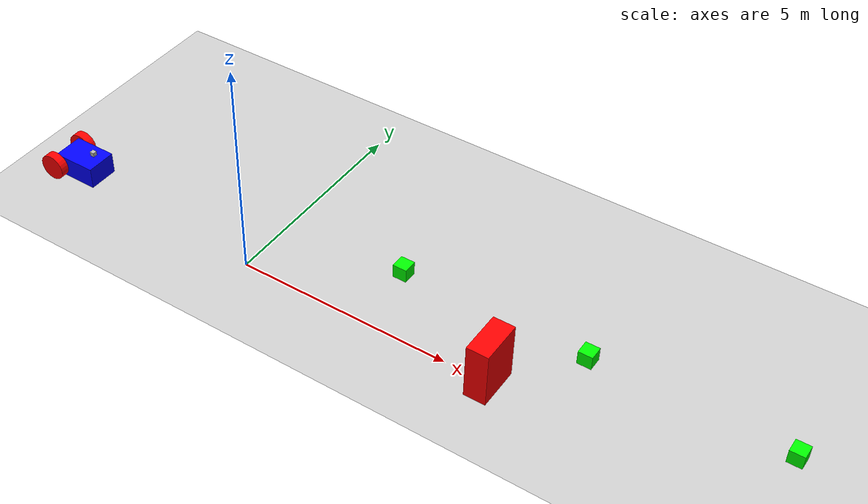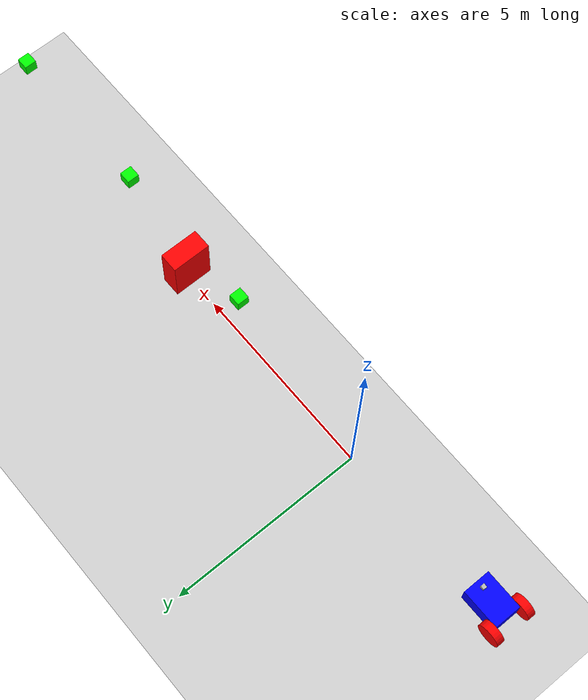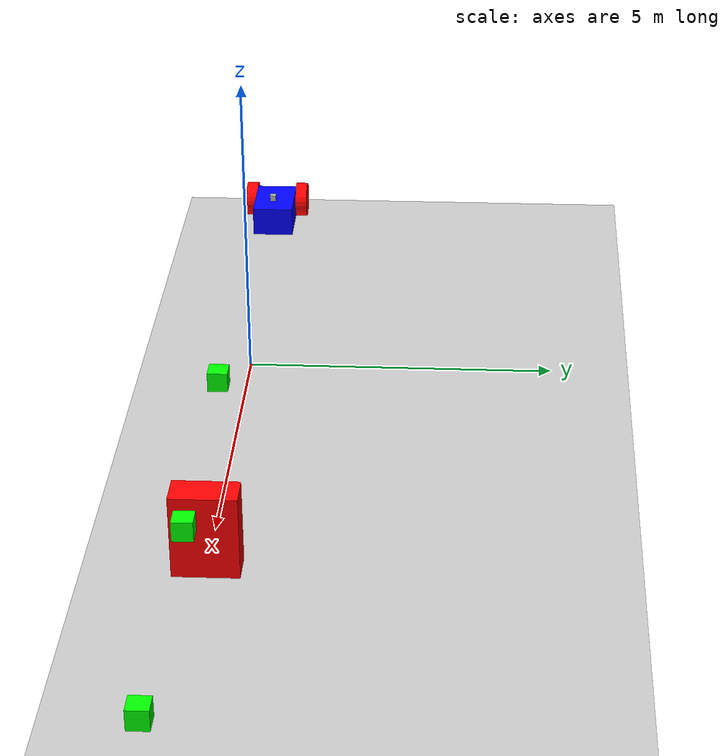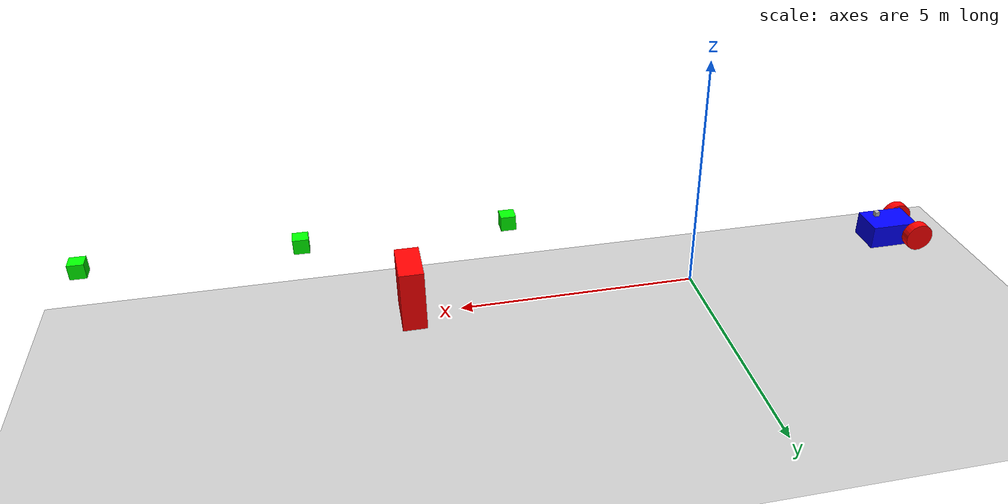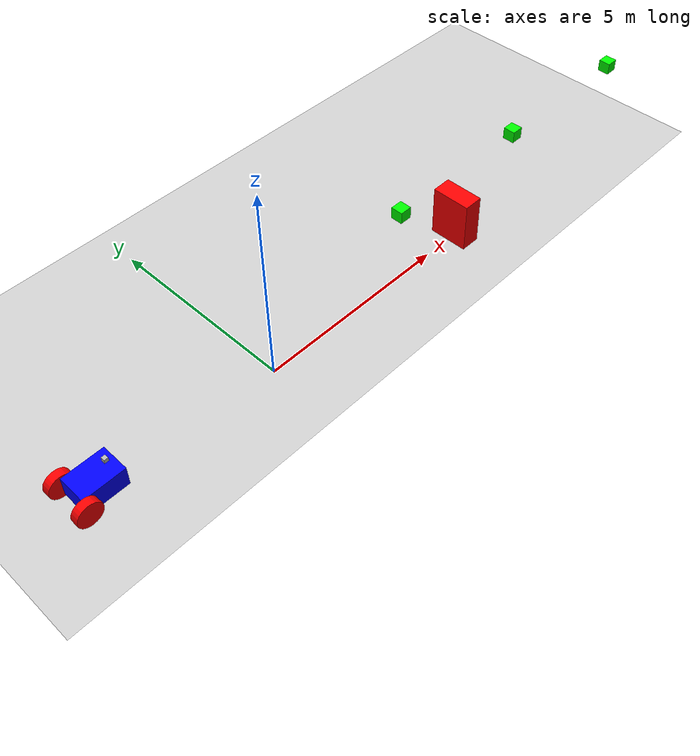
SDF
<?xml version="1.0" ?>
<sdf version="1.8">
    <world name="avg_world">
        <physics name="1ms" type="ignored">
            <max_step_size>0.001</max_step_size>
            <real_time_factor>1.0</real_time_factor>
        </physics>
        <plugin
            filename="ignition-gazebo-physics-system"
            name="ignition::gazebo::systems::Physics">
        </plugin>
        <plugin
            filename="ignition-gazebo-user-commands-system"
            name="ignition::gazebo::systems::UserCommands">
        </plugin>
        <plugin
            filename="ignition-gazebo-scene-broadcaster-system"
            name="ignition::gazebo::systems::SceneBroadcaster">
        </plugin>
        <plugin filename="ignition-gazebo-imu-system"
                name="ignition::gazebo::systems::Imu">
        </plugin>
        <plugin filename="ignition-gazebo-sensors-system"
                name="ignition::gazebo::systems::Sensors">
            <render_engine>ogre2</render_engine>
        </plugin>
        <plugin filename="ignition-gazebo-contact-system"
                name="ignition::gazebo::systems::Contact">
        </plugin>
        <gui fullscreen="0">
          <!-- 3D scene -->
          <plugin filename="MinimalScene" name="3D View">
          <gz-gui>
            <title>3D View</title>
            <property type="bool" key="showTitleBar">false</property>
            <property type="string" key="state">docked</property>
          </gz-gui>

          <engine>ogre2</engine>
          <scene>scene</scene>
          <ambient_light>0.4 0.4 0.4</ambient_light>
          <background_color>0.8 0.8 0.8</background_color>
          <camera_pose>-6 0 6 0 0.5 0</camera_pose>
          <camera_clip>
            <near>0.25</near>
            <far>25000</far>
          </camera_clip>
          </plugin>

          <!-- World control -->
          <plugin filename="WorldControl" name="World control">
          <gz-gui>
            <title>World control</title>
            <property type="bool" key="showTitleBar">false</property>
            <property type="bool" key="resizable">false</property>
            <property type="double" key="height">72</property>
            <property type="double" key="width">121</property>
            <property type="double" key="z">1</property>

            <property type="string" key="state">floating</property>
            <anchors target="3D View">
              <line own="left" target="left"/>
              <line own="bottom" target="bottom"/>
            </anchors>
          </gz-gui>

          <play_pause>true</play_pause>
          <step>true</step>
          <start_paused>true</start_paused>
          <use_event>true</use_event>
          </plugin>

          <!-- World statistics -->
          <plugin filename="WorldStats" name="World stats">
          <gz-gui>
            <title>World stats</title>
            <property type="bool" key="showTitleBar">false</property>
            <property type="bool" key="resizable">false</property>
            <property type="double" key="height">110</property>
            <property type="double" key="width">290</property>
            <property type="double" key="z">1</property>

            <property type="string" key="state">floating</property>
            <anchors target="3D View">
              <line own="right" target="right"/>
              <line own="bottom" target="bottom"/>
            </anchors>
          </gz-gui>

          <sim_time>true</sim_time>
          <real_time>true</real_time>
          <real_time_factor>true</real_time_factor>
          <iterations>true</iterations>
          </plugin>

          <plugin filename="VisualizeLidar" name="Visualize Lidar">
          </plugin>

          <!-- Plugins that add functionality to the scene -->
          <plugin filename="EntityContextMenuPlugin" name="Entity context menu">
          <gz-gui>
            <property key="state" type="string">floating</property>
            <property key="width" type="double">5</property>
            <property key="height" type="double">5</property>
            <property key="showTitleBar" type="bool">false</property>
          </gz-gui>
          </plugin>
          <plugin filename="GzSceneManager" name="Scene Manager">
          <gz-gui>
            <property key="resizable" type="bool">false</property>
            <property key="width" type="double">5</property>
            <property key="height" type="double">5</property>
            <property key="state" type="string">floating</property>
            <property key="showTitleBar" type="bool">false</property>
          </gz-gui>
          </plugin>
          <plugin filename="InteractiveViewControl" name="Interactive view control">
          <gz-gui>
            <property key="resizable" type="bool">false</property>
            <property key="width" type="double">5</property>
            <property key="height" type="double">5</property>
            <property key="state" type="string">floating</property>
            <property key="showTitleBar" type="bool">false</property>
          </gz-gui>
          </plugin>
          <plugin filename="CameraTracking" name="Camera Tracking">
          <gz-gui>
            <property key="resizable" type="bool">false</property>
            <property key="width" type="double">5</property>
            <property key="height" type="double">5</property>
            <property key="state" type="string">floating</property>
            <property key="showTitleBar" type="bool">false</property>
          </gz-gui>
          </plugin>
          <plugin filename="MarkerManager" name="Marker manager">
          <gz-gui>
            <property key="resizable" type="bool">false</property>
            <property key="width" type="double">5</property>
            <property key="height" type="double">5</property>
            <property key="state" type="string">floating</property>
            <property key="showTitleBar" type="bool">false</property>
          </gz-gui>
          </plugin>
          <plugin filename="SelectEntities" name="Select Entities">
          <gz-gui>
            <anchors target="Select entities">
              <line own="right" target="right"/>
              <line own="top" target="top"/>
            </anchors>
            <property key="resizable" type="bool">false</property>
            <property key="width" type="double">5</property>
            <property key="height" type="double">5</property>
            <property key="state" type="string">floating</property>
            <property key="showTitleBar" type="bool">false</property>
          </gz-gui>
          </plugin>
          <plugin filename="VisualizationCapabilities" name="Visualization Capabilities">
          <gz-gui>
            <property key="resizable" type="bool">false</property>
            <property key="width" type="double">5</property>
            <property key="height" type="double">5</property>
            <property key="state" type="string">floating</property>
            <property key="showTitleBar" type="bool">false</property>
          </gz-gui>
          </plugin>

          <plugin filename="Spawn" name="Spawn Entities">
          <gz-gui>
            <anchors target="Select entities">
              <line own="right" target="right"/>
              <line own="top" target="top"/>
            </anchors>
            <property key="resizable" type="bool">false</property>
            <property key="width" type="double">5</property>
            <property key="height" type="double">5</property>
            <property key="state" type="string">floating</property>
            <property key="showTitleBar" type="bool">false</property>
          </gz-gui>
          </plugin>

          <!-- Insert simple shapes -->
          <plugin filename="Shapes" name="Shapes">
          <gz-gui>
            <property key="resizable" type="bool">false</property>
            <property key="x" type="double">0</property>
            <property key="y" type="double">0</property>
            <property key="width" type="double">250</property>
            <property key="height" type="double">50</property>
            <property key="state" type="string">floating</property>
            <property key="showTitleBar" type="bool">false</property>
            <property key="cardBackground" type="string">#666666</property>
          </gz-gui>
          </plugin>

          <!-- Insert lights -->
          <plugin filename="Lights" name="Lights">
          <gz-gui>
            <property key="resizable" type="bool">false</property>
            <property key="x" type="double">250</property>
            <property key="y" type="double">0</property>
            <property key="width" type="double">150</property>
            <property key="height" type="double">50</property>
            <property key="state" type="string">floating</property>
            <property key="showTitleBar" type="bool">false</property>
            <property key="cardBackground" type="string">#666666</property>
          </gz-gui>
          </plugin>

          <!-- Translate / rotate -->
          <plugin filename="TransformControl" name="Transform control">
          <gz-gui>
            <property key="resizable" type="bool">false</property>
            <property key="x" type="double">0</property>
            <property key="y" type="double">50</property>
            <property key="width" type="double">250</property>
            <property key="height" type="double">50</property>
            <property key="state" type="string">floating</property>
            <property key="showTitleBar" type="bool">false</property>
            <property key="cardBackground" type="string">#777777</property>
          </gz-gui>
          </plugin>

          <!-- Screenshot -->
          <plugin filename="Screenshot" name="Screenshot">
          <gz-gui>
            <property key="resizable" type="bool">false</property>
            <property key="x" type="double">250</property>
            <property key="y" type="double">50</property>
            <property key="width" type="double">50</property>
            <property key="height" type="double">50</property>
            <property key="state" type="string">floating</property>
            <property key="showTitleBar" type="bool">false</property>
            <property key="cardBackground" type="string">#777777</property>
          </gz-gui>
          </plugin>

          <!-- Video recorder -->
          <plugin filename="VideoRecorder" name="VideoRecorder">
          <gz-gui>
            <property key="resizable" type="bool">false</property>
            <property key="x" type="double">300</property>
            <property key="y" type="double">50</property>
            <property key="width" type="double">50</property>
            <property key="height" type="double">50</property>
            <property key="state" type="string">floating</property>
            <property key="showTitleBar" type="bool">false</property>
            <property key="cardBackground" type="string">#777777</property>
          </gz-gui>

          <record_video>
            <use_sim_time>true</use_sim_time>
            <lockstep>false</lockstep>
            <bitrate>4000000</bitrate>
          </record_video>
          </plugin>

          <!-- Inspector -->
          <plugin filename="ComponentInspector" name="Component inspector">
          <gz-gui>
            <property type="string" key="state">docked_collapsed</property>
          </gz-gui>
          </plugin>

          <!-- Entity tree -->
          <plugin filename="EntityTree" name="Entity tree">
          <gz-gui>
            <property type="string" key="state">docked_collapsed</property>
          </gz-gui>
          </plugin>

          <!-- View angle -->
          <plugin filename="ViewAngle" name="View angle">
          <gz-gui>
            <property type="string" key="state">docked_collapsed</property>
          </gz-gui>
          </plugin>

            <!-- KeyPublisher plugin-->
            <plugin filename="KeyPublisher" name="Key Publisher"/>

        </gui>

        <light type="directional" name="sun">
            <cast_shadows>true</cast_shadows>
            <pose>0 0 10 0 0 0</pose>
            <diffuse>0.8 0.8 0.8 1</diffuse>
            <specular>0.2 0.2 0.2 1</specular>
            <attenuation>
                <range>1000</range>
                <constant>0.9</constant>
                <linear>0.01</linear>
                <quadratic>0.001</quadratic>
            </attenuation>
            <direction>-0.5 0.1 -0.9</direction>
        </light>

        <model name="ground_plane">
            <static>true</static>
            <link name="link">
                <collision name="collision">
                <geometry>
                    <plane>
                    <normal>0 0 1</normal>
                    </plane>
                </geometry>
                </collision>
                <visual name="visual">
                <geometry>
                    <plane>
                    <normal>0 0 1</normal>
                    <size>100 100</size>
                    </plane>
                </geometry>
                <material>
                    <ambient>0.8 0.8 0.8 1</ambient>
                    <diffuse>0.8 0.8 0.8 1</diffuse>
                    <specular>0.8 0.8 0.8 1</specular>
                </material>
                </visual>
            </link>
        </model>

        <model name='vehicle' canonical_link='chassis'>
            <pose>-5 0 0.325 0 0 0.0</pose>
            <link name='chassis'>
                <pose relative_to='__model__'>0.5 0 0.4 0 0 0</pose>
                <inertial>
                    <mass>1.14395</mass>
                    <inertia>
                        <ixx>0.126164</ixx>
                        <ixy>0</ixy>
                        <ixz>0</ixz>
                        <iyy>0.416519</iyy>
                        <iyz>0</iyz>
                        <izz>0.481014</izz>
                    </inertia>
                </inertial>
                <visual name='visual'>
                    <geometry>
                        <box>
                            <size>1.0 0.7 0.5</size>
                        </box>
                    </geometry>
                    <material>
                        <ambient>0.0 0.0 1.0 1</ambient>
                        <diffuse>0.0 0.0 1.0 1</diffuse>
                        <specular>0.0 0.0 1.0 1</specular>
                    </material>
                </visual>
                <collision name='collision'>
                    <geometry>
                        <box>
                            <size>1.0 1.0 0.5</size>
                        </box>
                    </geometry>
                </collision>
                <sensor name="imu_sensor" type="imu">
                    <always_on>1</always_on>
                    <update_rate>1</update_rate>
                    <visualize>true</visualize>
                    <topic>imu</topic>
                </sensor>
            </link>

            <!-- Lidar -->
            <link name="lidar_link">
              <pose relative_to="chassis">0.3 0 0.4 0 0 0</pose> <!--angles are in radian-->
              <inertial>
                <mass>0.1</mass>
                <inertia>
                  <ixx>0.000166667</ixx>
                  <iyy>0.000166667</iyy>
                  <izz>0.000166667</izz>
                </inertia>
              </inertial>
              <collision name="collision">
                <geometry>
                  <box>
                    <size>0.1 0.1 0.1</size>
                  </box>
                </geometry>
              </collision>
              <visual name="visual">
                <geometry>
                  <box>
                    <size>0.1 0.1 0.1</size>
                  </box>
                </geometry>
              </visual>
              <sensor name='gpu_lidar' type='gpu_lidar'>
              <pose>0 0 0 0 0 0</pose>
                <topic>lidar</topic>
                <update_rate>10</update_rate>
                <lidar>
                  <scan>
                    <horizontal>
                      <samples>640</samples>
                      <resolution>1</resolution>
                      <min_angle>-3.142</min_angle>
                      <max_angle>3.142</max_angle>
                    </horizontal>
                    <vertical>
                      <samples>1</samples>
                      <resolution>1</resolution>
                      <min_angle>0.0</min_angle>
                      <max_angle>0.0</max_angle>
                    </vertical>
                  </scan>
                  <range>
                    <min>0.08</min>
                    <max>10.0</max>
                    <resolution>0.01</resolution>
                  </range>
                </lidar>
                <alwaysOn>1</alwaysOn>
                <visualize>true</visualize>
              </sensor>
            </link>

            <!-- Left Wheel -->
            <link name='left_wheel'>
                <pose relative_to="chassis">-0.5 0.45 0 -1.5707 0 0</pose>
                <inertial>
                    <mass>2</mass>
                    <inertia>
                        <ixx>0.145833</ixx>
                        <ixy>0</ixy>
                        <ixz>0</ixz>
                        <iyy>0.145833</iyy>
                        <iyz>0</iyz>
                        <izz>0.125</izz>
                    </inertia>
                </inertial>
                <visual name='visual'>
                    <geometry>
                        <cylinder>
                            <radius>0.3</radius>
                            <length>0.2</length>
                        </cylinder>
                    </geometry>
                    <material>
                        <ambient>1.0 0.0 0.0 1</ambient>
                        <diffuse>1.0 0.0 0.0 1</diffuse>
                        <specular>1.0 0.0 0.0 1</specular>
                    </material>
                </visual>
                <collision name='collision'>
                    <geometry>
                        <cylinder>
                            <radius>0.3</radius>
                            <length>0.2</length>
                        </cylinder>
                    </geometry>
                </collision>
            </link>

            <!-- Right Wheel -->
            <link name='right_wheel'>
                <pose relative_to="chassis">-0.5 -0.45 0 -1.5707 0 0</pose>
                <inertial>
                    <mass>1</mass>
                    <inertia>
                        <ixx>0.145833</ixx>
                        <ixy>0</ixy>
                        <ixz>0</ixz>
                        <iyy>0.145833</iyy>
                        <iyz>0</iyz>
                        <izz>0.125</izz>
                    </inertia>
                </inertial>
                <visual name='visual'>
                    <geometry>
                        <cylinder>
                            <radius>0.3</radius>
                            <length>0.2</length>
                        </cylinder>
                    </geometry>
                    <material>
                        <ambient>1.0 0.0 0.0 1</ambient>
                        <diffuse>1.0 0.0 0.0 1</diffuse>
                        <specular>1.0 0.0 0.0 1</specular>
                    </material>
                </visual>
                <collision name='collision'>
                    <geometry>
                        <cylinder>
                            <radius>0.3</radius>
                            <length>0.2</length>
                        </cylinder>
                    </geometry>
                </collision>
            </link>

            <frame name="caster_frame" attached_to='chassis'>
                <pose>0.3 0 -0.2 0 0 0</pose>
            </frame>

            <!--caster wheel-->
            <link name='caster'>
                <pose relative_to='caster_frame'/>
                <inertial>
                    <mass>1</mass>
                    <inertia>
                        <ixx>0.1</ixx>
                        <ixy>0</ixy>
                        <ixz>0</ixz>
                        <iyy>0.1</iyy>
                        <iyz>0</iyz>
                        <izz>0.1</izz>
                    </inertia>
                </inertial>
                <visual name='visual'>
                    <geometry>
                        <sphere>
                            <radius>0.1</radius>
                        </sphere>
                    </geometry>
                    <material>
                        <ambient>0.0 1 0.0 1</ambient>
                        <diffuse>0.0 1 0.0 1</diffuse>
                        <specular>0.0 1 0.0 1</specular>
                    </material>
                </visual>
                <collision name='collision'>
                    <geometry>
                        <sphere>
                            <radius>0.1</radius>
                        </sphere>
                    </geometry>
                </collision>
            </link>

            <joint name='lidar_sensor_joint' type='fixed'>
              <parent>chassis</parent>
              <child>lidar_link</child>
            </joint>

            <!--connecting these links together using joints-->
            <joint name='left_wheel_joint' type='revolute'> <!--continous joint is not supported yet-->
                <pose relative_to='left_wheel'/>
                <parent>chassis</parent>
                <child>left_wheel</child>
                <axis>
                    <xyz expressed_in='__model__'>0 1 0</xyz> <!--can be descired to any frame or even arbitrary frames-->
                    <limit>
                        <lower>-1.79769e+308</lower>    <!--negative infinity-->
                        <upper>1.79769e+308</upper>     <!--positive infinity-->
                    </limit>
                </axis>
            </joint>

            <joint name='right_wheel_joint' type='revolute'>
                <pose relative_to='right_wheel'/>
                <parent>chassis</parent>
                <child>right_wheel</child>
                <axis>
                    <xyz expressed_in='__model__'>0 1 0</xyz>
                    <limit>
                        <lower>-1.79769e+308</lower>    <!--negative infinity-->
                        <upper>1.79769e+308</upper>     <!--positive infinity-->
                    </limit>
                </axis>
            </joint>

            <!--different type of joints ball joint--> <!--defult value is the child-->
            <joint name='caster_wheel' type='ball'>
                <parent>chassis</parent>
                <child>caster</child>
            </joint>

            <!--diff drive plugin-->
            <plugin
                filename="ignition-gazebo-diff-drive-system"
                name="ignition::gazebo::systems::DiffDrive">
                <left_joint>left_wheel_joint</left_joint>
                <right_joint>right_wheel_joint</right_joint>
                <wheel_separation>0.9</wheel_separation>
                <wheel_radius>0.3</wheel_radius>
                <odom_publish_frequency>1</odom_publish_frequency>
                <topic>cmd_vel</topic>
            </plugin>
        </model>

        <!-- Green Marker -->
        <model name="box1">
          <pose relative_to="vehicle">4 0 2 0 0 0</pose>
          <static>true</static>
          <link name="box_link">
            <inertial>
              <inertia>
                <ixx>1</ixx>
                <ixy>0</ixy>
                <ixz>0</ixz>
                <iyy>1</iyy>
                <iyz>0</iyz>
                <izz>1</izz>
              </inertia>
              <mass>1.0</mass>
            </inertial>
            <collision name="box_collision">
              <geometry>
                <box>
                  <size>0.3 0.3 0.3</size>
                </box>
              </geometry>
            </collision>
            <visual name="box_visual">
              <geometry>
                <box>
                  <size>0.3 0.3 0.3</size>
                </box>
              </geometry>
              <material>
                <ambient>0 1 0 1</ambient>
                <diffuse>0 1 0 1</diffuse>
                <specular>0 1 0 1</specular>
              </material>
            </visual>
          </link>
        </model>

        <!-- Green Marker -->
        <model name="box2">
          <pose relative_to="vehicle">8 0 2 0 0 0</pose>
          <static>true</static>
          <link name="box_link">
            <inertial>
              <inertia>
                <ixx>1</ixx>
                <ixy>0</ixy>
                <ixz>0</ixz>
                <iyy>1</iyy>
                <iyz>0</iyz>
                <izz>1</izz>
              </inertia>
              <mass>1.0</mass>
            </inertial>
            <collision name="box_collision">
              <geometry>
                <box>
                  <size>0.3 0.3 0.3</size>
                </box>
              </geometry>
            </collision>
            <visual name="box_visual">
              <geometry>
                <box>
                  <size>0.3 0.3 0.3</size>
                </box>
              </geometry>
              <material>
                <ambient>0 1 0 1</ambient>
                <diffuse>0 1 0 1</diffuse>
                <specular>0 1 0 1</specular>
              </material>
            </visual>
          </link>
        </model>

        <!-- Green Marker -->
        <model name="box3">
          <pose relative_to="vehicle">12 0 2 0 0 0</pose>
          <static>true</static>
          <link name="box_link">
            <inertial>
              <inertia>
                <ixx>1</ixx>
                <ixy>0</ixy>
                <ixz>0</ixz>
                <iyy>1</iyy>
                <iyz>0</iyz>
                <izz>1</izz>
              </inertia>
              <mass>1.0</mass>
            </inertial>
            <collision name="box_collision">
              <geometry>
                <box>
                  <size>0.3 0.3 0.3</size>
                </box>
              </geometry>
            </collision>
            <visual name="box_visual">
              <geometry>
                <box>
                  <size>0.3 0.3 0.3</size>
                </box>
              </geometry>
              <material>
                <ambient>0 1 0 1</ambient>
                <diffuse>0 1 0 1</diffuse>
                <specular>0 1 0 1</specular>
              </material>
            </visual>
          </link>
        </model>

        <!-- Red Obstacle -->
        <model name="box4">
          <pose relative_to="vehicle">6 0 0.3 0 0 0</pose>
          <link name="box_link">
            <inertial>
              <inertia>
                <ixx>1</ixx>
                <ixy>0</ixy>
                <ixz>0</ixz>
                <iyy>1</iyy>
                <iyz>0</iyz>
                <izz>1</izz>
              </inertia>
              <mass>1.0</mass>
            </inertial>
            <collision name="box_collision">
              <geometry>
                <box>
                  <size>0.5 1.0 2.0</size>
                </box>
              </geometry>
            </collision>

            <visual name="box_visual">
              <geometry>
                <box>
                  <size>0.5 1.0 2.0</size>
                </box>
              </geometry>
              <material>
                <ambient>1 0 0 1</ambient>
                <diffuse>1 0 0 1</diffuse>
                <specular>1 0 0 1</specular>
              </material>
            </visual>
          </link>
        </model>

        <!-- Moving Forward-->
        <plugin filename="ignition-gazebo-triggered-publisher-system"
                name="ignition::gazebo::systems::TriggeredPublisher">
            <input type="ignition.msgs.Int32" topic="/keyboard/keypress">
                <match field="data">16777235</match>
            </input>
            <output type="ignition.msgs.Twist" topic="/cmd_vel">
                linear: {x: 0.5}, angular: {z: 0.0}
            </output>
        </plugin>

        <!-- Moving Backward-->
        <plugin filename="ignition-gazebo-triggered-publisher-system"
                name="ignition::gazebo::systems::TriggeredPublisher">
            <input type="ignition.msgs.Int32" topic="/keyboard/keypress">
                <match field="data">16777237</match>
            </input>
            <output type="ignition.msgs.Twist" topic="/cmd_vel">
                linear: {x: -0.5}, angular: {z: 0.0}
            </output>
        </plugin>

        <!-- Rotating right-->
        <plugin filename="ignition-gazebo-triggered-publisher-system"
                name="ignition::gazebo::systems::TriggeredPublisher">
            <input type="ignition.msgs.Int32" topic="/keyboard/keypress">
                <match field="data">16777236</match>
            </input>
            <output type="ignition.msgs.Twist" topic="/cmd_vel">
                linear: {x: 0.0}, angular: {z: -0.5}
            </output>
        </plugin>

        <!--Rotating left-->
        <plugin filename="ignition-gazebo-triggered-publisher-system"
                name="ignition::gazebo::systems::TriggeredPublisher">
            <input type="ignition.msgs.Int32" topic="/keyboard/keypress">
                <match field="data">16777234</match>
            </input>
            <output type="ignition.msgs.Twist" topic="/cmd_vel">
                linear: {x: 0.0}, angular: {z: 0.5}
            </output>
        </plugin>

        <!--stop when hit the wall-->
        <plugin filename="ignition-gazebo-triggered-publisher-system"
                name="ignition::gazebo::systems::TriggeredPublisher">
            <input type="ignition.msgs.Boolean" topic="/wall/touched">
                <match>data: true</match>
            </input>
            <output type="ignition.msgs.Twist" topic="/cmd_vel">
                linear: {x: 0.0}, angular: {z: 0.0}
            </output>
        </plugin>

    </world>
</sdf>
